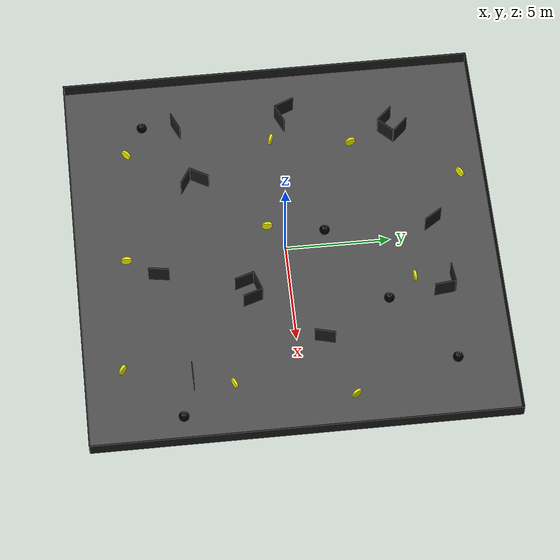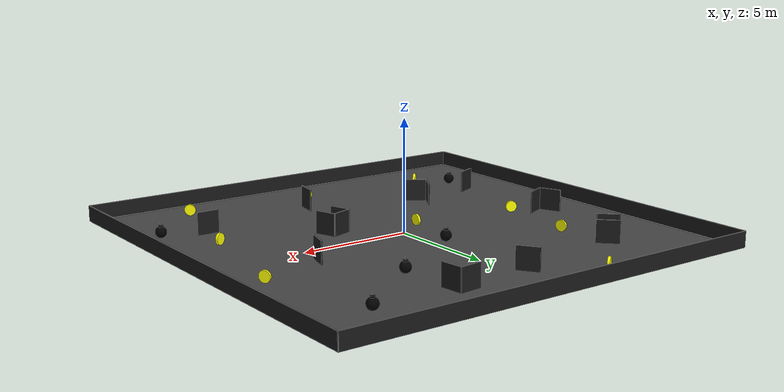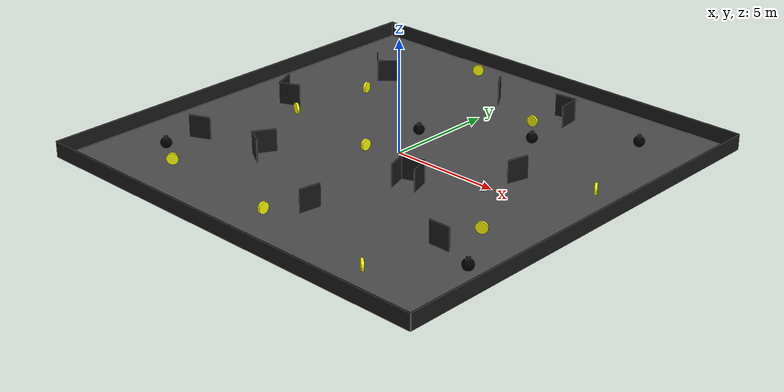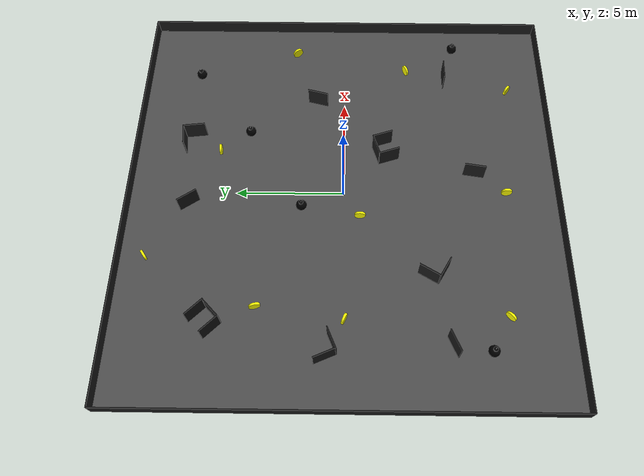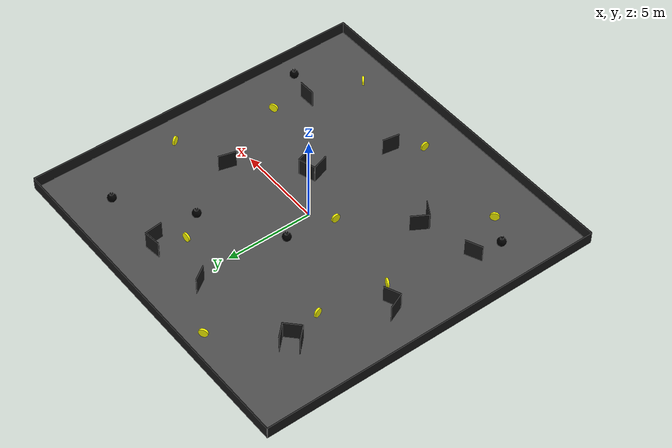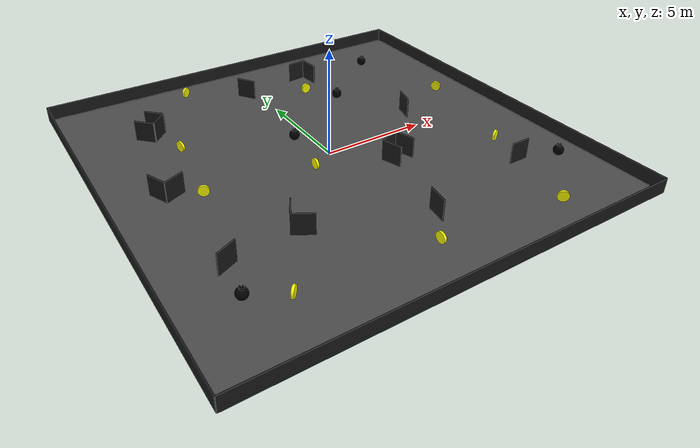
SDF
<sdf version="1.6">
 <world name="default">
  <model name="labrob_ground">
   <static>1</static>
   <link name="link">
    <collision name="collision">
     <geometry><plane><normal>0 0 1</normal><size>20 20</size></plane></geometry>
     <surface><contact><collide_bitmask>2</collide_bitmask></contact></surface>
    </collision>
    <visual name="visual">
     <cast_shadows>0</cast_shadows>
     <geometry><plane><normal>0 0 1</normal><size>20 20</size></plane></geometry>
     <material>
      <script>
       <uri>model://labrob_ground/materials/scripts/</uri>
       <uri>model://labrob_ground/materials/textures/</uri>
       <name>Labrob/AsphaltGround</name>
      </script>
     </material>
    </visual>
   </link>
  </model>
  <light name="sun" type="directional">
   <pose>0 0 10 0 -0 0</pose>
   <diffuse>0.8 0.8 0.8 1</diffuse>
   <specular>0.1 0.1 0.1 1</specular>
   <attenuation>
    <range>1000</range>
    <constant>0.9</constant>
    <linear>0.01</linear>
    <quadratic>0.001</quadratic>
   </attenuation>
   <direction>-0.5 0.5 -1</direction>
  </light>
  <model name="borders">
   <static>1</static>
   <link name="chassis_pos_x">
    <pose>10 0 0.35 0 -0 1.57079</pose>
    <collision name="collision_pos_x"><geometry><box><size>20 0.05 0.7</size></box></geometry></collision>
    <visual name="visual">
     <geometry><box><size>20 0.05 0.7</size></box></geometry>
     <material>
      <ambient>0.1 0.1 0.1 1</ambient>
      <diffuse>0.1 0.1 0.1 1</diffuse>
      <specular>0.1 0.1 0.1 1</specular>
      <emissive>0 0 0 0</emissive>
     </material>
    </visual>
    <sensor name="contact_sensor_1" type="contact">
     <plugin name="my_contact_plugin" filename="libgazebo_ros_bumper.so">
      <bumperTopicName>border_bumper</bumperTopicName>
      <frameName>world</frameName>
     </plugin>
     <contact><collision>collision_pos_x</collision><topic>__default_topic__</topic></contact>
    </sensor>
   </link>
   <link name="chassis_neg_x">
    <pose>-10 0 0.35 0 -0 1.57079</pose>
    <collision name="collision_neg_x"><geometry><box><size>20 0.05 0.7</size></box></geometry></collision>
    <visual name="visual">
     <geometry><box><size>20 0.05 0.7</size></box></geometry>
     <material>
      <ambient>0.1 0.1 0.1 1</ambient>
      <diffuse>0.1 0.1 0.1 1</diffuse>
      <specular>0.1 0.1 0.1 1</specular>
      <emissive>0 0 0 0</emissive>
     </material>
    </visual>
    <sensor name="contact_sensor_2" type="contact">
     <plugin name="my_contact_plugin" filename="libgazebo_ros_bumper.so">
      <bumperTopicName>border_bumper</bumperTopicName>
      <frameName>world</frameName>
     </plugin>
     <contact><collision>collision_neg_x</collision><topic>__default_topic__</topic></contact>
    </sensor>
   </link>
   <link name="chassis_pos_y">
    <pose>0 10 0.35 0 -0 0</pose>
    <collision name="collision_pos_y"><geometry><box><size>20 0.05 0.7</size></box></geometry></collision>
    <visual name="visual">
     <geometry><box><size>20 0.05 0.7</size></box></geometry>
     <material>
      <ambient>0.1 0.1 0.1 1</ambient>
      <diffuse>0.1 0.1 0.1 1</diffuse>
      <specular>0.1 0.1 0.1 1</specular>
      <emissive>0 0 0 0</emissive>
     </material>
    </visual>
    <sensor name="contact_sensor_3" type="contact">
     <plugin name="my_contact_plugin" filename="libgazebo_ros_bumper.so">
      <bumperTopicName>border_bumper</bumperTopicName>
      <frameName>world</frameName>
     </plugin>
     <contact><collision>collision_pos_y</collision><topic>__default_topic__</topic></contact>
    </sensor>
   </link>
   <link name="chassis_neg_y">
    <pose>0 -10 0.35 0 -0 0</pose>
    <collision name="collision_neg_y"><geometry><box><size>20 0.05 0.7</size></box></geometry></collision>
    <visual name="visual">
     <geometry><box><size>20 0.05 0.7</size></box></geometry>
     <material>
      <ambient>0.1 0.1 0.1 1</ambient>
      <diffuse>0.1 0.1 0.1 1</diffuse>
      <specular>0.1 0.1 0.1 1</specular>
      <emissive>0 0 0 0</emissive>
     </material>
    </visual>
    <sensor name="contact_sensor_4" type="contact">
     <plugin name="my_contact_plugin" filename="libgazebo_ros_bumper.so">
      <bumperTopicName>border_bumper</bumperTopicName>
      <frameName>world</frameName>
     </plugin>
     <contact><collision>collision_neg_y</collision><topic>__default_topic__</topic></contact>
    </sensor>
   </link>
  </model>
  <gravity>0 0 -9.8</gravity>
  <magnetic_field>6e-06 2.3e-05 -4.2e-05</magnetic_field>
  <atmosphere type="adiabatic"/>
  <physics name="default_physics" default="0" type="ode">
   <max_step_size>0.001</max_step_size>
   <real_time_factor>1</real_time_factor>
   <real_time_update_rate>1000</real_time_update_rate>
  </physics>
  <scene><ambient>0.4 0.4 0.4 1</ambient><background>0.7 0.7 0.7 1</background><shadows>1</shadows></scene>
  <spherical_coordinates>
   <surface_model>EARTH_WGS84</surface_model>
   <latitude_deg>0</latitude_deg>
   <longitude_deg>0</longitude_deg>
   <elevation>0</elevation>
   <heading_deg>0</heading_deg>
  </spherical_coordinates>
  <model name="coin_0">
   <link name="chassis">
    <pose>0 0 0.26 0 -0 0</pose>
    <collision name="box_collision">
     <geometry><sphere><radius>0.25</radius></sphere></geometry>
     <surface>
      <contact><collide_bitmask>1</collide_bitmask><ode><min_depth>10</min_depth><kp>1</kp></ode></contact>
     </surface>
    </collision>
    <visual name="visual">
     <pose>0 0 0 0 1.57 0</pose>
     <geometry><cylinder><radius>0.25</radius><length>0.1</length></cylinder></geometry>
     <material>
      <ambient>1 1 0 1</ambient>
      <diffuse>1 1 0 1</diffuse>
      <specular>0.1 0.1 0.1 1</specular>
      <emissive>0 0 0 0</emissive>
     </material>
    </visual>
    <sensor name="contact_sensor_1" type="contact">
     <plugin name="my_contact_plugin" filename="libgazebo_ros_bumper.so">
      <bumperTopicName>coin_bumper</bumperTopicName>
      <frameName>world</frameName>
     </plugin>
     <contact><collision>box_collision</collision><topic>__default_topic__</topic></contact>
    </sensor>
    <inertial>
     <inertia><ixx>1</ixx><ixy>0</ixy><ixz>0</ixz><iyy>1</iyy><iyz>0</iyz><izz>1</izz></inertia>
     <mass>1</mass>
    </inertial>
   </link>
   <joint name="coin_hinge" type="revolute">
    <pose>0 0 0.26 0 -0 0</pose>
    <child>chassis</child>
    <parent>world</parent>
    <axis>
     <xyz>0 0 1</xyz>
     <use_parent_model_frame>1</use_parent_model_frame>
     <limit><lower>-1e+16</lower><upper>1e+16</upper></limit>
     <dynamics><spring_reference>0</spring_reference><spring_stiffness>0</spring_stiffness></dynamics>
    </axis>
   </joint>
   <pose>5.97189 -8.2112 0 0 -0 0.897135</pose>
  </model>
  <model name="coin_1">
   <link name="chassis">
    <pose>0 0 0.26 0 -0 0</pose>
    <collision name="box_collision">
     <geometry><sphere><radius>0.25</radius></sphere></geometry>
     <surface>
      <contact><collide_bitmask>1</collide_bitmask><ode><min_depth>10</min_depth><kp>1</kp></ode></contact>
     </surface>
    </collision>
    <visual name="visual">
     <pose>0 0 0 0 1.57 0</pose>
     <geometry><cylinder><radius>0.25</radius><length>0.1</length></cylinder></geometry>
     <material>
      <ambient>1 1 0 1</ambient>
      <diffuse>1 1 0 1</diffuse>
      <specular>0.1 0.1 0.1 1</specular>
      <emissive>0 0 0 0</emissive>
     </material>
    </visual>
    <sensor name="contact_sensor_1" type="contact">
     <plugin name="my_contact_plugin" filename="libgazebo_ros_bumper.so">
      <bumperTopicName>coin_bumper</bumperTopicName>
      <frameName>world</frameName>
     </plugin>
     <contact><collision>box_collision</collision><topic>__default_topic__</topic></contact>
    </sensor>
    <inertial>
     <inertia><ixx>1</ixx><ixy>0</ixy><ixz>0</ixz><iyy>1</iyy><iyz>0</iyz><izz>1</izz></inertia>
     <mass>1</mass>
    </inertial>
   </link>
   <joint name="coin_hinge" type="revolute">
    <pose>0 0 0.26 0 -0 0</pose>
    <child>chassis</child>
    <parent>world</parent>
    <axis>
     <xyz>0 0 1</xyz>
     <use_parent_model_frame>1</use_parent_model_frame>
     <limit><lower>-1e+16</lower><upper>1e+16</upper></limit>
     <dynamics><spring_reference>0</spring_reference><spring_stiffness>0</spring_stiffness></dynamics>
    </axis>
   </joint>
   <pose>7.18767 -3.11099 0 0 0 -1.10786</pose>
  </model>
  <model name="coin_2">
   <link name="chassis">
    <pose>0 0 0.26 0 -0 0</pose>
    <collision name="box_collision">
     <geometry><sphere><radius>0.25</radius></sphere></geometry>
     <surface>
      <contact><collide_bitmask>1</collide_bitmask><ode><min_depth>10</min_depth><kp>1</kp></ode></contact>
     </surface>
    </collision>
    <visual name="visual">
     <pose>0 0 0 0 1.57 0</pose>
     <geometry><cylinder><radius>0.25</radius><length>0.1</length></cylinder></geometry>
     <material>
      <ambient>1 1 0 1</ambient>
      <diffuse>1 1 0 1</diffuse>
      <specular>0.1 0.1 0.1 1</specular>
      <emissive>0 0 0 0</emissive>
     </material>
    </visual>
    <sensor name="contact_sensor_1" type="contact">
     <plugin name="my_contact_plugin" filename="libgazebo_ros_bumper.so">
      <bumperTopicName>coin_bumper</bumperTopicName>
      <frameName>world</frameName>
     </plugin>
     <contact><collision>box_collision</collision><topic>__default_topic__</topic></contact>
    </sensor>
    <inertial>
     <inertia><ixx>1</ixx><ixy>0</ixy><ixz>0</ixz><iyy>1</iyy><iyz>0</iyz><izz>1</izz></inertia>
     <mass>1</mass>
    </inertial>
   </link>
   <joint name="coin_hinge" type="revolute">
    <pose>0 0 0.26 0 -0 0</pose>
    <child>chassis</child>
    <parent>world</parent>
    <axis>
     <xyz>0 0 1</xyz>
     <use_parent_model_frame>1</use_parent_model_frame>
     <limit><lower>-1e+16</lower><upper>1e+16</upper></limit>
     <dynamics><spring_reference>0</spring_reference><spring_stiffness>0</spring_stiffness></dynamics>
    </axis>
   </joint>
   <pose>0.065991 -7.62177 0 0 0 -3.11786</pose>
  </model>
  <model name="coin_3">
   <link name="chassis">
    <pose>0 0 0.26 0 -0 0</pose>
    <collision name="box_collision">
     <geometry><sphere><radius>0.25</radius></sphere></geometry>
     <surface>
      <contact><collide_bitmask>1</collide_bitmask><ode><min_depth>10</min_depth><kp>1</kp></ode></contact>
     </surface>
    </collision>
    <visual name="visual">
     <pose>0 0 0 0 1.57 0</pose>
     <geometry><cylinder><radius>0.25</radius><length>0.1</length></cylinder></geometry>
     <material>
      <ambient>1 1 0 1</ambient>
      <diffuse>1 1 0 1</diffuse>
      <specular>0.1 0.1 0.1 1</specular>
      <emissive>0 0 0 0</emissive>
     </material>
    </visual>
    <sensor name="contact_sensor_1" type="contact">
     <plugin name="my_contact_plugin" filename="libgazebo_ros_bumper.so">
      <bumperTopicName>coin_bumper</bumperTopicName>
      <frameName>world</frameName>
     </plugin>
     <contact><collision>box_collision</collision><topic>__default_topic__</topic></contact>
    </sensor>
    <inertial>
     <inertia><ixx>1</ixx><ixy>0</ixy><ixz>0</ixz><iyy>1</iyy><iyz>0</iyz><izz>1</izz></inertia>
     <mass>1</mass>
    </inertial>
   </link>
   <joint name="coin_hinge" type="revolute">
    <pose>0 0 0.26 0 -0 0</pose>
    <child>chassis</child>
    <parent>world</parent>
    <axis>
     <xyz>0 0 1</xyz>
     <use_parent_model_frame>1</use_parent_model_frame>
     <limit><lower>-1e+16</lower><upper>1e+16</upper></limit>
     <dynamics><spring_reference>0</spring_reference><spring_stiffness>0</spring_stiffness></dynamics>
    </axis>
   </joint>
   <pose>-6.1401 -0.106064 0 0 -0 1.15533</pose>
  </model>
  <model name="coin_4">
   <link name="chassis">
    <pose>0 0 0.26 0 -0 0</pose>
    <collision name="box_collision">
     <geometry><sphere><radius>0.25</radius></sphere></geometry>
     <surface>
      <contact><collide_bitmask>1</collide_bitmask><ode><min_depth>10</min_depth><kp>1</kp></ode></contact>
     </surface>
    </collision>
    <visual name="visual">
     <pose>0 0 0 0 1.57 0</pose>
     <geometry><cylinder><radius>0.25</radius><length>0.1</length></cylinder></geometry>
     <material>
      <ambient>1 1 0 1</ambient>
      <diffuse>1 1 0 1</diffuse>
      <specular>0.1 0.1 0.1 1</specular>
      <emissive>0 0 0 0</emissive>
     </material>
    </visual>
    <sensor name="contact_sensor_1" type="contact">
     <plugin name="my_contact_plugin" filename="libgazebo_ros_bumper.so">
      <bumperTopicName>coin_bumper</bumperTopicName>
      <frameName>world</frameName>
     </plugin>
     <contact><collision>box_collision</collision><topic>__default_topic__</topic></contact>
    </sensor>
    <inertial>
     <inertia><ixx>1</ixx><ixy>0</ixy><ixz>0</ixz><iyy>1</iyy><iyz>0</iyz><izz>1</izz></inertia>
     <mass>1</mass>
    </inertial>
   </link>
   <joint name="coin_hinge" type="revolute">
    <pose>0 0 0.26 0 -0 0</pose>
    <child>chassis</child>
    <parent>world</parent>
    <axis>
     <xyz>0 0 1</xyz>
     <use_parent_model_frame>1</use_parent_model_frame>
     <limit><lower>-1e+16</lower><upper>1e+16</upper></limit>
     <dynamics><spring_reference>0</spring_reference><spring_stiffness>0</spring_stiffness></dynamics>
    </axis>
   </joint>
   <pose>-5.94647 -7.2039 0 0 0 -0.781046</pose>
  </model>
  <model name="coin_5">
   <link name="chassis">
    <pose>0 0 0.26 0 -0 0</pose>
    <collision name="box_collision">
     <geometry><sphere><radius>0.25</radius></sphere></geometry>
     <surface>
      <contact><collide_bitmask>1</collide_bitmask><ode><min_depth>10</min_depth><kp>1</kp></ode></contact>
     </surface>
    </collision>
    <visual name="visual">
     <pose>0 0 0 0 1.57 0</pose>
     <geometry><cylinder><radius>0.25</radius><length>0.1</length></cylinder></geometry>
     <material>
      <ambient>1 1 0 1</ambient>
      <diffuse>1 1 0 1</diffuse>
      <specular>0.1 0.1 0.1 1</specular>
      <emissive>0 0 0 0</emissive>
     </material>
    </visual>
    <sensor name="contact_sensor_1" type="contact">
     <plugin name="my_contact_plugin" filename="libgazebo_ros_bumper.so">
      <bumperTopicName>coin_bumper</bumperTopicName>
      <frameName>world</frameName>
     </plugin>
     <contact><collision>box_collision</collision><topic>__default_topic__</topic></contact>
    </sensor>
    <inertial>
     <inertia><ixx>1</ixx><ixy>0</ixy><ixz>0</ixz><iyy>1</iyy><iyz>0</iyz><izz>1</izz></inertia>
     <mass>1</mass>
    </inertial>
   </link>
   <joint name="coin_hinge" type="revolute">
    <pose>0 0 0.26 0 -0 0</pose>
    <child>chassis</child>
    <parent>world</parent>
    <axis>
     <xyz>0 0 1</xyz>
     <use_parent_model_frame>1</use_parent_model_frame>
     <limit><lower>-1e+16</lower><upper>1e+16</upper></limit>
     <dynamics><spring_reference>0</spring_reference><spring_stiffness>0</spring_stiffness></dynamics>
    </axis>
   </joint>
   <pose>-5.61397 3.74701 0 0 0 -2.86466</pose>
  </model>
  <model name="coin_6">
   <link name="chassis">
    <pose>0 0 0.26 0 -0 0</pose>
    <collision name="box_collision">
     <geometry><sphere><radius>0.25</radius></sphere></geometry>
     <surface>
      <contact><collide_bitmask>1</collide_bitmask><ode><min_depth>10</min_depth><kp>1</kp></ode></contact>
     </surface>
    </collision>
    <visual name="visual">
     <pose>0 0 0 0 1.57 0</pose>
     <geometry><cylinder><radius>0.25</radius><length>0.1</length></cylinder></geometry>
     <material>
      <ambient>1 1 0 1</ambient>
      <diffuse>1 1 0 1</diffuse>
      <specular>0.1 0.1 0.1 1</specular>
      <emissive>0 0 0 0</emissive>
     </material>
    </visual>
    <sensor name="contact_sensor_1" type="contact">
     <plugin name="my_contact_plugin" filename="libgazebo_ros_bumper.so">
      <bumperTopicName>coin_bumper</bumperTopicName>
      <frameName>world</frameName>
     </plugin>
     <contact><collision>box_collision</collision><topic>__default_topic__</topic></contact>
    </sensor>
    <inertial>
     <inertia><ixx>1</ixx><ixy>0</ixy><ixz>0</ixz><iyy>1</iyy><iyz>0</iyz><izz>1</izz></inertia>
     <mass>1</mass>
    </inertial>
   </link>
   <joint name="coin_hinge" type="revolute">
    <pose>0 0 0.26 0 -0 0</pose>
    <child>chassis</child>
    <parent>world</parent>
    <axis>
     <xyz>0 0 1</xyz>
     <use_parent_model_frame>1</use_parent_model_frame>
     <limit><lower>-1e+16</lower><upper>1e+16</upper></limit>
     <dynamics><spring_reference>0</spring_reference><spring_stiffness>0</spring_stiffness></dynamics>
    </axis>
   </joint>
   <pose>-3.31729 8.84097 0 0 -0 2.19246</pose>
  </model>
  <model name="coin_8">
   <link name="chassis">
    <pose>0 0 0.26 0 -0 0</pose>
    <collision name="box_collision">
     <geometry><sphere><radius>0.25</radius></sphere></geometry>
     <surface>
      <contact><collide_bitmask>1</collide_bitmask><ode><min_depth>10</min_depth><kp>1</kp></ode></contact>
     </surface>
    </collision>
    <visual name="visual">
     <pose>0 0 0 0 1.57 0</pose>
     <geometry><cylinder><radius>0.25</radius><length>0.1</length></cylinder></geometry>
     <material>
      <ambient>1 1 0 1</ambient>
      <diffuse>1 1 0 1</diffuse>
      <specular>0.1 0.1 0.1 1</specular>
      <emissive>0 0 0 0</emissive>
     </material>
    </visual>
    <sensor name="contact_sensor_1" type="contact">
     <plugin name="my_contact_plugin" filename="libgazebo_ros_bumper.so">
      <bumperTopicName>coin_bumper</bumperTopicName>
      <frameName>world</frameName>
     </plugin>
     <contact><collision>box_collision</collision><topic>__default_topic__</topic></contact>
    </sensor>
    <inertial>
     <inertia><ixx>1</ixx><ixy>0</ixy><ixz>0</ixz><iyy>1</iyy><iyz>0</iyz><izz>1</izz></inertia>
     <mass>1</mass>
    </inertial>
   </link>
   <joint name="coin_hinge" type="revolute">
    <pose>0 0 0.26 0 -0 0</pose>
    <child>chassis</child>
    <parent>world</parent>
    <axis>
     <xyz>0 0 1</xyz>
     <use_parent_model_frame>1</use_parent_model_frame>
     <limit><lower>-1e+16</lower><upper>1e+16</upper></limit>
     <dynamics><spring_reference>0</spring_reference><spring_stiffness>0</spring_stiffness></dynamics>
    </axis>
   </joint>
   <pose>8.29026 2.47138 0 0 0 -2.60646</pose>
  </model>
  <model name="coin_9">
   <link name="chassis">
    <pose>0 0 0.26 0 -0 0</pose>
    <collision name="box_collision">
     <geometry><sphere><radius>0.25</radius></sphere></geometry>
     <surface>
      <contact><collide_bitmask>1</collide_bitmask><ode><min_depth>10</min_depth><kp>1</kp></ode></contact>
     </surface>
    </collision>
    <visual name="visual">
     <pose>0 0 0 0 1.57 0</pose>
     <geometry><cylinder><radius>0.25</radius><length>0.1</length></cylinder></geometry>
     <material>
      <ambient>1 1 0 1</ambient>
      <diffuse>1 1 0 1</diffuse>
      <specular>0.1 0.1 0.1 1</specular>
      <emissive>0 0 0 0</emissive>
     </material>
    </visual>
    <sensor name="contact_sensor_1" type="contact">
     <plugin name="my_contact_plugin" filename="libgazebo_ros_bumper.so">
      <bumperTopicName>coin_bumper</bumperTopicName>
      <frameName>world</frameName>
     </plugin>
     <contact><collision>box_collision</collision><topic>__default_topic__</topic></contact>
    </sensor>
    <inertial>
     <inertia><ixx>1</ixx><ixy>0</ixy><ixz>0</ixz><iyy>1</iyy><iyz>0</iyz><izz>1</izz></inertia>
     <mass>1</mass>
    </inertial>
   </link>
   <joint name="coin_hinge" type="revolute">
    <pose>0 0 0.26 0 -0 0</pose>
    <child>chassis</child>
    <parent>world</parent>
    <axis>
     <xyz>0 0 1</xyz>
     <use_parent_model_frame>1</use_parent_model_frame>
     <limit><lower>-1e+16</lower><upper>1e+16</upper></limit>
     <dynamics><spring_reference>0</spring_reference><spring_stiffness>0</spring_stiffness></dynamics>
    </axis>
   </joint>
   <pose>2.27152 5.9375 0 0 -0 1.66673</pose>
  </model>
  <model name="bomb_0">
   <link name="chassis">
    <pose>0 0 0.25 0 -0 0</pose>
    <collision name="box_collision">
     <geometry><sphere><radius>0.25</radius></sphere></geometry>
     <surface>
      <contact><collide_bitmask>1</collide_bitmask><ode><min_depth>10</min_depth><kp>1</kp></ode></contact>
     </surface>
    </collision>
    <visual name="visual">
     <pose>0 0 0.2 0 -0 0</pose>
     <geometry><cylinder><radius>0.1</radius><length>0.2</length></cylinder></geometry>
     <material>
      <ambient>0 0 0 1</ambient>
      <diffuse>0 0 0 1</diffuse>
      <specular>0.1 0.1 0.1 1</specular>
      <emissive>0 0 0 0</emissive>
     </material>
    </visual>
    <visual name="visual2">
     <geometry><sphere><radius>0.25</radius></sphere></geometry>
     <material>
      <ambient>0 0 0 1</ambient>
      <diffuse>0 0 0 1</diffuse>
      <specular>0.1 0.1 0.1 1</specular>
      <emissive>0 0 0 0</emissive>
     </material>
    </visual>
    <visual name="visual3">
     <pose>0 0 0.3 0 -0 0</pose>
     <geometry><cylinder><radius>0.01</radius><length>0.2</length></cylinder></geometry>
     <material>
      <ambient>1 1 1 1</ambient>
      <diffuse>1 1 1 1</diffuse>
      <specular>0.1 0.1 0.1 1</specular>
      <emissive>0 0 0 0</emissive>
     </material>
    </visual>
    <sensor name="contact_sensor_1" type="contact">
     <plugin name="my_contact_plugin" filename="libgazebo_ros_bumper.so">
      <bumperTopicName>bomb_bumper</bumperTopicName>
      <frameName>world</frameName>
     </plugin>
     <contact><collision>box_collision</collision><topic>__default_topic__</topic></contact>
    </sensor>
    <inertial>
     <inertia><ixx>1</ixx><ixy>0</ixy><ixz>0</ixz><iyy>1</iyy><iyz>0</iyz><izz>1</izz></inertia>
     <mass>1</mass>
    </inertial>
   </link>
   <joint name="bomb_hinge" type="revolute">
    <pose>0 0 0.2 0 -0 0</pose>
    <child>chassis</child>
    <parent>world</parent>
    <axis>
     <xyz>0 0 0</xyz>
     <use_parent_model_frame>1</use_parent_model_frame>
     <limit><lower>-1e+16</lower><upper>1e+16</upper></limit>
     <dynamics><spring_reference>0</spring_reference><spring_stiffness>0</spring_stiffness></dynamics>
    </axis>
   </joint>
   <pose>8.66688 -5.58582 0 0 -0 0</pose>
  </model>
  <model name="bomb_1">
   <link name="chassis">
    <pose>0 0 0.25 0 -0 0</pose>
    <collision name="box_collision">
     <geometry><sphere><radius>0.25</radius></sphere></geometry>
     <surface>
      <contact><collide_bitmask>1</collide_bitmask><ode><min_depth>10</min_depth><kp>1</kp></ode></contact>
     </surface>
    </collision>
    <visual name="visual">
     <pose>0 0 0.2 0 -0 0</pose>
     <geometry><cylinder><radius>0.1</radius><length>0.2</length></cylinder></geometry>
     <material>
      <ambient>0 0 0 1</ambient>
      <diffuse>0 0 0 1</diffuse>
      <specular>0.1 0.1 0.1 1</specular>
      <emissive>0 0 0 0</emissive>
     </material>
    </visual>
    <visual name="visual2">
     <geometry><sphere><radius>0.25</radius></sphere></geometry>
     <material>
      <ambient>0 0 0 1</ambient>
      <diffuse>0 0 0 1</diffuse>
      <specular>0.1 0.1 0.1 1</specular>
      <emissive>0 0 0 0</emissive>
     </material>
    </visual>
    <visual name="visual3">
     <pose>0 0 0.3 0 -0 0</pose>
     <geometry><cylinder><radius>0.01</radius><length>0.2</length></cylinder></geometry>
     <material>
      <ambient>1 1 1 1</ambient>
      <diffuse>1 1 1 1</diffuse>
      <specular>0.1 0.1 0.1 1</specular>
      <emissive>0 0 0 0</emissive>
     </material>
    </visual>
    <sensor name="contact_sensor_1" type="contact">
     <plugin name="my_contact_plugin" filename="libgazebo_ros_bumper.so">
      <bumperTopicName>bomb_bumper</bumperTopicName>
      <frameName>world</frameName>
     </plugin>
     <contact><collision>box_collision</collision><topic>__default_topic__</topic></contact>
    </sensor>
    <inertial>
     <inertia><ixx>1</ixx><ixy>0</ixy><ixz>0</ixz><iyy>1</iyy><iyz>0</iyz><izz>1</izz></inertia>
     <mass>1</mass>
    </inertial>
   </link>
   <joint name="bomb_hinge" type="revolute">
    <pose>0 0 0.2 0 -0 0</pose>
    <child>chassis</child>
    <parent>world</parent>
    <axis>
     <xyz>0 0 0</xyz>
     <use_parent_model_frame>1</use_parent_model_frame>
     <limit><lower>-1e+16</lower><upper>1e+16</upper></limit>
     <dynamics><spring_reference>0</spring_reference><spring_stiffness>0</spring_stiffness></dynamics>
    </axis>
   </joint>
   <pose>-7.44565 -6.33086 0.000376 0.040876 -0 0</pose>
  </model>
  <model name="bomb_2">
   <link name="chassis">
    <pose>0 0 0.25 0 -0 0</pose>
    <collision name="box_collision">
     <geometry><sphere><radius>0.25</radius></sphere></geometry>
     <surface>
      <contact><collide_bitmask>1</collide_bitmask><ode><min_depth>10</min_depth><kp>1</kp></ode></contact>
     </surface>
    </collision>
    <visual name="visual">
     <pose>0 0 0.2 0 -0 0</pose>
     <geometry><cylinder><radius>0.1</radius><length>0.2</length></cylinder></geometry>
     <material>
      <ambient>0 0 0 1</ambient>
      <diffuse>0 0 0 1</diffuse>
      <specular>0.1 0.1 0.1 1</specular>
      <emissive>0 0 0 0</emissive>
     </material>
    </visual>
    <visual name="visual2">
     <geometry><sphere><radius>0.25</radius></sphere></geometry>
     <material>
      <ambient>0 0 0 1</ambient>
      <diffuse>0 0 0 1</diffuse>
      <specular>0.1 0.1 0.1 1</specular>
      <emissive>0 0 0 0</emissive>
     </material>
    </visual>
    <visual name="visual3">
     <pose>0 0 0.3 0 -0 0</pose>
     <geometry><cylinder><radius>0.01</radius><length>0.2</length></cylinder></geometry>
     <material>
      <ambient>1 1 1 1</ambient>
      <diffuse>1 1 1 1</diffuse>
      <specular>0.1 0.1 0.1 1</specular>
      <emissive>0 0 0 0</emissive>
     </material>
    </visual>
    <sensor name="contact_sensor_1" type="contact">
     <plugin name="my_contact_plugin" filename="libgazebo_ros_bumper.so">
      <bumperTopicName>bomb_bumper</bumperTopicName>
      <frameName>world</frameName>
     </plugin>
     <contact><collision>box_collision</collision><topic>__default_topic__</topic></contact>
    </sensor>
    <inertial>
     <inertia><ixx>1</ixx><ixy>0</ixy><ixz>0</ixz><iyy>1</iyy><iyz>0</iyz><izz>1</izz></inertia>
     <mass>1</mass>
    </inertial>
   </link>
   <joint name="bomb_hinge" type="revolute">
    <pose>0 0 0.2 0 -0 0</pose>
    <child>chassis</child>
    <parent>world</parent>
    <axis>
     <xyz>0 0 0</xyz>
     <use_parent_model_frame>1</use_parent_model_frame>
     <limit><lower>-1e+16</lower><upper>1e+16</upper></limit>
     <dynamics><spring_reference>0</spring_reference><spring_stiffness>0</spring_stiffness></dynamics>
    </axis>
   </joint>
   <pose>-0.712575 1.94011 5.6e-05 -0.015845 0 0</pose>
  </model>
  <model name="bomb_3">
   <link name="chassis">
    <pose>0 0 0.25 0 -0 0</pose>
    <collision name="box_collision">
     <geometry><sphere><radius>0.25</radius></sphere></geometry>
     <surface>
      <contact><collide_bitmask>1</collide_bitmask><ode><min_depth>10</min_depth><kp>1</kp></ode></contact>
     </surface>
    </collision>
    <visual name="visual">
     <pose>0 0 0.2 0 -0 0</pose>
     <geometry><cylinder><radius>0.1</radius><length>0.2</length></cylinder></geometry>
     <material>
      <ambient>0 0 0 1</ambient>
      <diffuse>0 0 0 1</diffuse>
      <specular>0.1 0.1 0.1 1</specular>
      <emissive>0 0 0 0</emissive>
     </material>
    </visual>
    <visual name="visual2">
     <geometry><sphere><radius>0.25</radius></sphere></geometry>
     <material>
      <ambient>0 0 0 1</ambient>
      <diffuse>0 0 0 1</diffuse>
      <specular>0.1 0.1 0.1 1</specular>
      <emissive>0 0 0 0</emissive>
     </material>
    </visual>
    <visual name="visual3">
     <pose>0 0 0.3 0 -0 0</pose>
     <geometry><cylinder><radius>0.01</radius><length>0.2</length></cylinder></geometry>
     <material>
      <ambient>1 1 1 1</ambient>
      <diffuse>1 1 1 1</diffuse>
      <specular>0.1 0.1 0.1 1</specular>
      <emissive>0 0 0 0</emissive>
     </material>
    </visual>
    <sensor name="contact_sensor_1" type="contact">
     <plugin name="my_contact_plugin" filename="libgazebo_ros_bumper.so">
      <bumperTopicName>bomb_bumper</bumperTopicName>
      <frameName>world</frameName>
     </plugin>
     <contact><collision>box_collision</collision><topic>__default_topic__</topic></contact>
    </sensor>
    <inertial>
     <inertia><ixx>1</ixx><ixy>0</ixy><ixz>0</ixz><iyy>1</iyy><iyz>0</iyz><izz>1</izz></inertia>
     <mass>1</mass>
    </inertial>
   </link>
   <joint name="bomb_hinge" type="revolute">
    <pose>0 0 0.2 0 -0 0</pose>
    <child>chassis</child>
    <parent>world</parent>
    <axis>
     <xyz>0 0 0</xyz>
     <use_parent_model_frame>1</use_parent_model_frame>
     <limit><lower>-1e+16</lower><upper>1e+16</upper></limit>
     <dynamics><spring_reference>0</spring_reference><spring_stiffness>0</spring_stiffness></dynamics>
    </axis>
   </joint>
   <pose>3.34096 4.57578 0 0 -0 0</pose>
  </model>
  <model name="bomb_4">
   <link name="chassis">
    <pose>0 0 0.25 0 -0 0</pose>
    <collision name="box_collision">
     <geometry><sphere><radius>0.25</radius></sphere></geometry>
     <surface>
      <contact><collide_bitmask>1</collide_bitmask><ode><min_depth>10</min_depth><kp>1</kp></ode></contact>
     </surface>
    </collision>
    <visual name="visual">
     <pose>0 0 0.2 0 -0 0</pose>
     <geometry><cylinder><radius>0.1</radius><length>0.2</length></cylinder></geometry>
     <material>
      <ambient>0 0 0 1</ambient>
      <diffuse>0 0 0 1</diffuse>
      <specular>0.1 0.1 0.1 1</specular>
      <emissive>0 0 0 0</emissive>
     </material>
    </visual>
    <visual name="visual2">
     <geometry><sphere><radius>0.25</radius></sphere></geometry>
     <material>
      <ambient>0 0 0 1</ambient>
      <diffuse>0 0 0 1</diffuse>
      <specular>0.1 0.1 0.1 1</specular>
      <emissive>0 0 0 0</emissive>
     </material>
    </visual>
    <visual name="visual3">
     <pose>0 0 0.3 0 -0 0</pose>
     <geometry><cylinder><radius>0.01</radius><length>0.2</length></cylinder></geometry>
     <material>
      <ambient>1 1 1 1</ambient>
      <diffuse>1 1 1 1</diffuse>
      <specular>0.1 0.1 0.1 1</specular>
      <emissive>0 0 0 0</emissive>
     </material>
    </visual>
    <sensor name="contact_sensor_1" type="contact">
     <plugin name="my_contact_plugin" filename="libgazebo_ros_bumper.so">
      <bumperTopicName>bomb_bumper</bumperTopicName>
      <frameName>world</frameName>
     </plugin>
     <contact><collision>box_collision</collision><topic>__default_topic__</topic></contact>
    </sensor>
    <inertial>
     <inertia><ixx>1</ixx><ixy>0</ixy><ixz>0</ixz><iyy>1</iyy><iyz>0</iyz><izz>1</izz></inertia>
     <mass>1</mass>
    </inertial>
   </link>
   <joint name="bomb_hinge" type="revolute">
    <pose>0 0 0.2 0 -0 0</pose>
    <child>chassis</child>
    <parent>world</parent>
    <axis>
     <xyz>0 0 0</xyz>
     <use_parent_model_frame>1</use_parent_model_frame>
     <limit><lower>-1e+16</lower><upper>1e+16</upper></limit>
     <dynamics><spring_reference>0</spring_reference><spring_stiffness>0</spring_stiffness></dynamics>
    </axis>
   </joint>
   <pose>6.8376 7.37581 0 0 -0 0</pose>
  </model>
  <model name="wall_1_0">
   <static>1</static>
   <link name="chassis">
    <pose>0 0 0.5 0 -0 0</pose>
    <collision name="barrier_collision"><geometry><box><size>1 0.05 1</size></box></geometry></collision>
    <visual name="visual">
     <geometry><box><size>1 0.05 1</size></box></geometry>
     <material>
      <ambient>0.1 0.1 0.1 1</ambient>
      <diffuse>0.1 0.1 0.1 1</diffuse>
      <specular>0.1 0.1 0.1 1</specular>
      <emissive>0 0 0 0</emissive>
     </material>
    </visual>
    <sensor name="contact_sensor_1" type="contact">
     <plugin name="my_contact_plugin" filename="libgazebo_ros_bumper.so">
      <bumperTopicName>obstacle_bumper</bumperTopicName>
      <frameName>world</frameName>
     </plugin>
     <contact><collision>barrier_collision</collision><topic>__default_topic__</topic></contact>
    </sensor>
   </link>
   <pose>1.08475 -6.15149 0 0 0 -1.72564</pose>
  </model>
  <model name="wall_1_1">
   <static>1</static>
   <link name="chassis">
    <pose>0 0 0.5 0 -0 0</pose>
    <collision name="barrier_collision"><geometry><box><size>1 0.05 1</size></box></geometry></collision>
    <visual name="visual">
     <geometry><box><size>1 0.05 1</size></box></geometry>
     <material>
      <ambient>0.1 0.1 0.1 1</ambient>
      <diffuse>0.1 0.1 0.1 1</diffuse>
      <specular>0.1 0.1 0.1 1</specular>
      <emissive>0 0 0 0</emissive>
     </material>
    </visual>
    <sensor name="contact_sensor_1" type="contact">
     <plugin name="my_contact_plugin" filename="libgazebo_ros_bumper.so">
      <bumperTopicName>obstacle_bumper</bumperTopicName>
      <frameName>world</frameName>
     </plugin>
     <contact><collision>barrier_collision</collision><topic>__default_topic__</topic></contact>
    </sensor>
   </link>
   <pose>6.75529 -5.00228 0 0 -0 0.009031</pose>
  </model>
  <model name="wall_1_2">
   <static>1</static>
   <link name="chassis">
    <pose>0 0 0.5 0 -0 0</pose>
    <collision name="barrier_collision"><geometry><box><size>1 0.05 1</size></box></geometry></collision>
    <visual name="visual">
     <geometry><box><size>1 0.05 1</size></box></geometry>
     <material>
      <ambient>0.1 0.1 0.1 1</ambient>
      <diffuse>0.1 0.1 0.1 1</diffuse>
      <specular>0.1 0.1 0.1 1</specular>
      <emissive>0 0 0 0</emissive>
     </material>
    </visual>
    <sensor name="contact_sensor_1" type="contact">
     <plugin name="my_contact_plugin" filename="libgazebo_ros_bumper.so">
      <bumperTopicName>obstacle_bumper</bumperTopicName>
      <frameName>world</frameName>
     </plugin>
     <contact><collision>barrier_collision</collision><topic>__default_topic__</topic></contact>
    </sensor>
   </link>
   <pose>-7.21416 -4.69234 0 0 0 -2.72564</pose>
  </model>
  <model name="wall_2_0">
   <static>1</static>
   <link name="chassis">
    <pose>0 0 0.5 0 -0 0</pose>
    <collision name="barrier_collision"><geometry><box><size>1 0.05 1</size></box></geometry></collision>
    <visual name="visual">
     <geometry><box><size>1 0.05 1</size></box></geometry>
     <material>
      <ambient>0.1 0.1 0.1 1</ambient>
      <diffuse>0.1 0.1 0.1 1</diffuse>
      <specular>0.1 0.1 0.1 1</specular>
      <emissive>0 0 0 0</emissive>
     </material>
    </visual>
    <collision name="barrier_collision2">
     <pose>-0.475 0.525 0 0 -0 1.57</pose>
     <geometry><box><size>1 0.05 1</size></box></geometry>
    </collision>
    <visual name="visual2">
     <pose>-0.475 0.525 0 0 -0 1.57</pose>
     <geometry><box><size>1 0.05 1</size></box></geometry>
     <material>
      <ambient>0.1 0.1 0.1 1</ambient>
      <diffuse>0.1 0.1 0.1 1</diffuse>
      <specular>0.1 0.1 0.1 1</specular>
      <emissive>0 0 0 0</emissive>
     </material>
    </visual>
    <sensor name="contact_sensor_1" type="contact">
     <plugin name="my_contact_plugin" filename="libgazebo_ros_bumper.so">
      <bumperTopicName>obstacle_bumper</bumperTopicName>
      <frameName>world</frameName>
     </plugin>
     <contact><collision>barrier_collision</collision><topic>__default_topic__</topic></contact>
    </sensor>
    <sensor name="contact_sensor_2" type="contact">
     <plugin name="my_contact_plugin" filename="libgazebo_ros_bumper.so">
      <bumperTopicName>obstacle_bumper</bumperTopicName>
      <frameName>world</frameName>
     </plugin>
     <contact><collision>barrier_collision2</collision><topic>__default_topic__</topic></contact>
    </sensor>
   </link>
   <pose>-3.99209 -4.46431 0 0 0 -0.530965</pose>
  </model>
  <model name="wall_3_0">
   <static>1</static>
   <link name="chassis">
    <pose>0 0 0.5 0 -0 0</pose>
    <collision name="collision"><geometry><box><size>1 0.05 1</size></box></geometry></collision>
    <visual name="visual">
     <geometry><box><size>1 0.05 1</size></box></geometry>
     <material>
      <ambient>0.1 0.1 0.1 1</ambient>
      <diffuse>0.1 0.1 0.1 1</diffuse>
      <specular>0.1 0.1 0.1 1</specular>
      <emissive>0 0 0 0</emissive>
     </material>
    </visual>
    <collision name="collision2">
     <pose>-0.475 0.525 0 0 -0 1.57</pose>
     <geometry><box><size>1 0.05 1</size></box></geometry>
    </collision>
    <visual name="visual2">
     <pose>-0.475 0.525 0 0 -0 1.57</pose>
     <geometry><box><size>1 0.05 1</size></box></geometry>
     <material>
      <ambient>0.1 0.1 0.1 1</ambient>
      <diffuse>0.1 0.1 0.1 1</diffuse>
      <specular>0.1 0.1 0.1 1</specular>
      <emissive>0 0 0 0</emissive>
     </material>
    </visual>
    <collision name="collision3">
     <pose>0 1 0 0 -0 0</pose>
     <geometry><box><size>1 0.05 1</size></box></geometry>
    </collision>
    <visual name="visual3">
     <pose>0 1 0 0 -0 0</pose>
     <geometry><box><size>1 0.05 1</size></box></geometry>
     <material>
      <ambient>0.1 0.1 0.1 1</ambient>
      <diffuse>0.1 0.1 0.1 1</diffuse>
      <specular>0.1 0.1 0.1 1</specular>
      <emissive>0 0 0 0</emissive>
     </material>
    </visual>
    <sensor name="contact_sensor_1" type="contact">
     <plugin name="my_contact_plugin" filename="libgazebo_ros_bumper.so">
      <bumperTopicName>obstacle_bumper</bumperTopicName>
      <frameName>world</frameName>
     </plugin>
     <contact><collision>collision</collision><topic>__default_topic__</topic></contact>
    </sensor>
    <sensor name="contact_sensor_2" type="contact">
     <plugin name="my_contact_plugin" filename="libgazebo_ros_bumper.so">
      <bumperTopicName>obstacle_bumper</bumperTopicName>
      <frameName>world</frameName>
     </plugin>
     <contact><collision>collision2</collision><topic>__default_topic__</topic></contact>
    </sensor>
    <sensor name="contact_sensor_3" type="contact">
     <plugin name="my_contact_plugin" filename="libgazebo_ros_bumper.so">
      <bumperTopicName>obstacle_bumper</bumperTopicName>
      <frameName>world</frameName>
     </plugin>
     <contact><collision>collision3</collision><topic>__default_topic__</topic></contact>
    </sensor>
   </link>
   <pose>1.86986 -2.14804 0 0 0 -1.24778</pose>
  </model>
  <model name="wall_1_3">
   <static>1</static>
   <link name="chassis">
    <pose>0 0 0.5 0 -0 0</pose>
    <collision name="barrier_collision"><geometry><box><size>1 0.05 1</size></box></geometry></collision>
    <visual name="visual">
     <geometry><box><size>1 0.05 1</size></box></geometry>
     <material>
      <ambient>0.1 0.1 0.1 1</ambient>
      <diffuse>0.1 0.1 0.1 1</diffuse>
      <specular>0.1 0.1 0.1 1</specular>
      <emissive>0 0 0 0</emissive>
     </material>
    </visual>
    <sensor name="contact_sensor_1" type="contact">
     <plugin name="my_contact_plugin" filename="libgazebo_ros_bumper.so">
      <bumperTopicName>obstacle_bumper</bumperTopicName>
      <frameName>world</frameName>
     </plugin>
     <contact><collision>barrier_collision</collision><topic>__default_topic__</topic></contact>
    </sensor>
   </link>
   <pose>-0.622805 7.1438 0 0 -0 2.16815</pose>
  </model>
  <model name="wall_2_1">
   <static>1</static>
   <link name="chassis">
    <pose>0 0 0.5 0 -0 0</pose>
    <collision name="barrier_collision"><geometry><box><size>1 0.05 1</size></box></geometry></collision>
    <visual name="visual">
     <geometry><box><size>1 0.05 1</size></box></geometry>
     <material>
      <ambient>0.1 0.1 0.1 1</ambient>
      <diffuse>0.1 0.1 0.1 1</diffuse>
      <specular>0.1 0.1 0.1 1</specular>
      <emissive>0 0 0 0</emissive>
     </material>
    </visual>
    <collision name="barrier_collision2">
     <pose>-0.475 0.525 0 0 -0 1.57</pose>
     <geometry><box><size>1 0.05 1</size></box></geometry>
    </collision>
    <visual name="visual2">
     <pose>-0.475 0.525 0 0 -0 1.57</pose>
     <geometry><box><size>1 0.05 1</size></box></geometry>
     <material>
      <ambient>0.1 0.1 0.1 1</ambient>
      <diffuse>0.1 0.1 0.1 1</diffuse>
      <specular>0.1 0.1 0.1 1</specular>
      <emissive>0 0 0 0</emissive>
     </material>
    </visual>
    <sensor name="contact_sensor_1" type="contact">
     <plugin name="my_contact_plugin" filename="libgazebo_ros_bumper.so">
      <bumperTopicName>obstacle_bumper</bumperTopicName>
      <frameName>world</frameName>
     </plugin>
     <contact><collision>barrier_collision</collision><topic>__default_topic__</topic></contact>
    </sensor>
    <sensor name="contact_sensor_2" type="contact">
     <plugin name="my_contact_plugin" filename="libgazebo_ros_bumper.so">
      <bumperTopicName>obstacle_bumper</bumperTopicName>
      <frameName>world</frameName>
     </plugin>
     <contact><collision>barrier_collision2</collision><topic>__default_topic__</topic></contact>
    </sensor>
   </link>
   <pose>-7.15142 0.415319 0 0 -0 0.407105</pose>
  </model>
  <model name="wall_3_1">
   <static>1</static>
   <link name="chassis">
    <pose>0 0 0.5 0 -0 0</pose>
    <collision name="collision"><geometry><box><size>1 0.05 1</size></box></geometry></collision>
    <visual name="visual">
     <geometry><box><size>1 0.05 1</size></box></geometry>
     <material>
      <ambient>0.1 0.1 0.1 1</ambient>
      <diffuse>0.1 0.1 0.1 1</diffuse>
      <specular>0.1 0.1 0.1 1</specular>
      <emissive>0 0 0 0</emissive>
     </material>
    </visual>
    <collision name="collision2">
     <pose>-0.475 0.525 0 0 -0 1.57</pose>
     <geometry><box><size>1 0.05 1</size></box></geometry>
    </collision>
    <visual name="visual2">
     <pose>-0.475 0.525 0 0 -0 1.57</pose>
     <geometry><box><size>1 0.05 1</size></box></geometry>
     <material>
      <ambient>0.1 0.1 0.1 1</ambient>
      <diffuse>0.1 0.1 0.1 1</diffuse>
      <specular>0.1 0.1 0.1 1</specular>
      <emissive>0 0 0 0</emissive>
     </material>
    </visual>
    <collision name="collision3">
     <pose>0 1 0 0 -0 0</pose>
     <geometry><box><size>1 0.05 1</size></box></geometry>
    </collision>
    <visual name="visual3">
     <pose>0 1 0 0 -0 0</pose>
     <geometry><box><size>1 0.05 1</size></box></geometry>
     <material>
      <ambient>0.1 0.1 0.1 1</ambient>
      <diffuse>0.1 0.1 0.1 1</diffuse>
      <specular>0.1 0.1 0.1 1</specular>
      <emissive>0 0 0 0</emissive>
     </material>
    </visual>
    <sensor name="contact_sensor_1" type="contact">
     <plugin name="my_contact_plugin" filename="libgazebo_ros_bumper.so">
      <bumperTopicName>obstacle_bumper</bumperTopicName>
      <frameName>world</frameName>
     </plugin>
     <contact><collision>collision</collision><topic>__default_topic__</topic></contact>
    </sensor>
    <sensor name="contact_sensor_2" type="contact">
     <plugin name="my_contact_plugin" filename="libgazebo_ros_bumper.so">
      <bumperTopicName>obstacle_bumper</bumperTopicName>
      <frameName>world</frameName>
     </plugin>
     <contact><collision>collision2</collision><topic>__default_topic__</topic></contact>
    </sensor>
    <sensor name="contact_sensor_3" type="contact">
     <plugin name="my_contact_plugin" filename="libgazebo_ros_bumper.so">
      <bumperTopicName>obstacle_bumper</bumperTopicName>
      <frameName>world</frameName>
     </plugin>
     <contact><collision>collision3</collision><topic>__default_topic__</topic></contact>
    </sensor>
   </link>
   <pose>-5.91479 6.20483 0 0 -0 2.34643</pose>
  </model>
  <model name="wall_1_4">
   <static>1</static>
   <link name="chassis">
    <pose>0 0 0.5 0 -0 0</pose>
    <collision name="barrier_collision"><geometry><box><size>1 0.05 1</size></box></geometry></collision>
    <visual name="visual">
     <geometry><box><size>1 0.05 1</size></box></geometry>
     <material>
      <ambient>0.1 0.1 0.1 1</ambient>
      <diffuse>0.1 0.1 0.1 1</diffuse>
      <specular>0.1 0.1 0.1 1</specular>
      <emissive>0 0 0 0</emissive>
     </material>
    </visual>
    <sensor name="contact_sensor_1" type="contact">
     <plugin name="my_contact_plugin" filename="libgazebo_ros_bumper.so">
      <bumperTopicName>obstacle_bumper</bumperTopicName>
      <frameName>world</frameName>
     </plugin>
     <contact><collision>barrier_collision</collision><topic>__default_topic__</topic></contact>
    </sensor>
   </link>
   <pose>5.22896 1.32122 0 0 -0 1.31859</pose>
  </model>
  <model name="wall_2_2">
   <static>1</static>
   <link name="chassis">
    <pose>0 0 0.5 0 -0 0</pose>
    <collision name="barrier_collision"><geometry><box><size>1 0.05 1</size></box></geometry></collision>
    <visual name="visual">
     <geometry><box><size>1 0.05 1</size></box></geometry>
     <material>
      <ambient>0.1 0.1 0.1 1</ambient>
      <diffuse>0.1 0.1 0.1 1</diffuse>
      <specular>0.1 0.1 0.1 1</specular>
      <emissive>0 0 0 0</emissive>
     </material>
    </visual>
    <collision name="barrier_collision2">
     <pose>-0.475 0.525 0 0 -0 1.57</pose>
     <geometry><box><size>1 0.05 1</size></box></geometry>
    </collision>
    <visual name="visual2">
     <pose>-0.475 0.525 0 0 -0 1.57</pose>
     <geometry><box><size>1 0.05 1</size></box></geometry>
     <material>
      <ambient>0.1 0.1 0.1 1</ambient>
      <diffuse>0.1 0.1 0.1 1</diffuse>
      <specular>0.1 0.1 0.1 1</specular>
      <emissive>0 0 0 0</emissive>
     </material>
    </visual>
    <sensor name="contact_sensor_1" type="contact">
     <plugin name="my_contact_plugin" filename="libgazebo_ros_bumper.so">
      <bumperTopicName>obstacle_bumper</bumperTopicName>
      <frameName>world</frameName>
     </plugin>
     <contact><collision>barrier_collision</collision><topic>__default_topic__</topic></contact>
    </sensor>
    <sensor name="contact_sensor_2" type="contact">
     <plugin name="my_contact_plugin" filename="libgazebo_ros_bumper.so">
      <bumperTopicName>obstacle_bumper</bumperTopicName>
      <frameName>world</frameName>
     </plugin>
     <contact><collision>barrier_collision2</collision><topic>__default_topic__</topic></contact>
    </sensor>
   </link>
   <pose>2.68337 7.6927 0 0 0 -3.02652</pose>
  </model>
  <model name="coin">
   <link name="chassis">
    <pose>0 0 0.26 0 -0 0</pose>
    <collision name="box_collision">
     <geometry><sphere><radius>0.25</radius></sphere></geometry>
     <surface>
      <contact><collide_bitmask>1</collide_bitmask><ode><min_depth>10</min_depth><kp>1</kp></ode></contact>
     </surface>
    </collision>
    <visual name="visual">
     <pose>0 0 0 0 1.57 0</pose>
     <geometry><cylinder><radius>0.25</radius><length>0.1</length></cylinder></geometry>
     <material>
      <ambient>1 1 0 1</ambient>
      <diffuse>1 1 0 1</diffuse>
      <specular>0.1 0.1 0.1 1</specular>
      <emissive>0 0 0 0</emissive>
     </material>
    </visual>
    <sensor name="contact_sensor_1" type="contact">
     <plugin name="my_contact_plugin" filename="libgazebo_ros_bumper.so">
      <bumperTopicName>coin_bumper</bumperTopicName>
      <frameName>world</frameName>
     </plugin>
     <contact><collision>box_collision</collision><topic>__default_topic__</topic></contact>
    </sensor>
    <inertial>
     <inertia><ixx>1</ixx><ixy>0</ixy><ixz>0</ixz><iyy>1</iyy><iyz>0</iyz><izz>1</izz></inertia>
     <mass>1</mass>
    </inertial>
   </link>
   <joint name="coin_hinge" type="revolute">
    <pose>0 0 0.26 0 -0 0</pose>
    <child>chassis</child>
    <parent>world</parent>
    <axis>
     <xyz>0 0 1</xyz>
     <use_parent_model_frame>1</use_parent_model_frame>
     <limit><lower>-1e+16</lower><upper>1e+16</upper></limit>
     <dynamics><spring_reference>0</spring_reference><spring_stiffness>0</spring_stiffness></dynamics>
    </axis>
   </joint>
   <pose>-1.20445 -0.771515 0 0 -0 0</pose>
  </model>
 </world>
</sdf>
